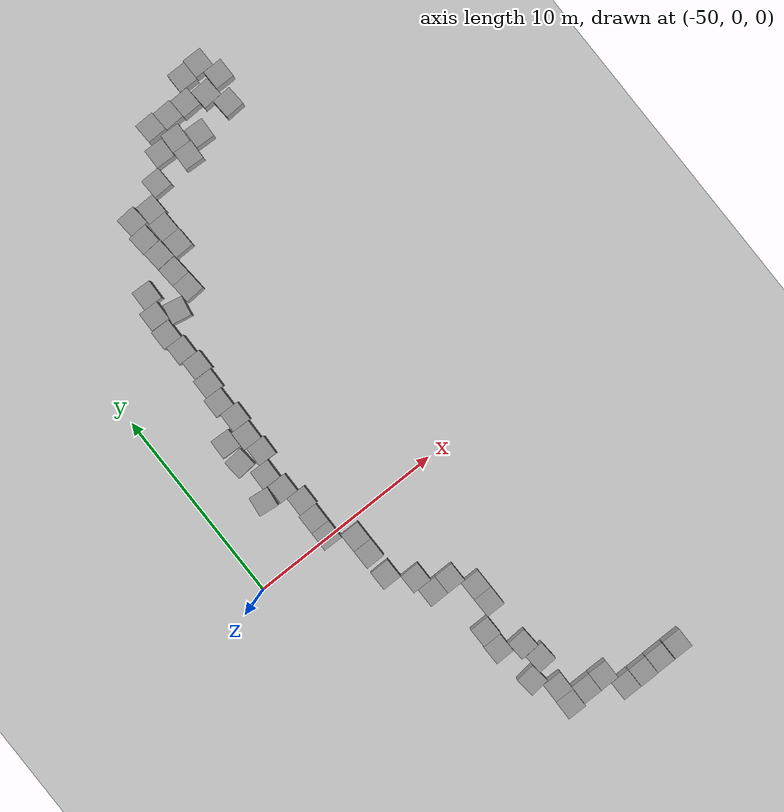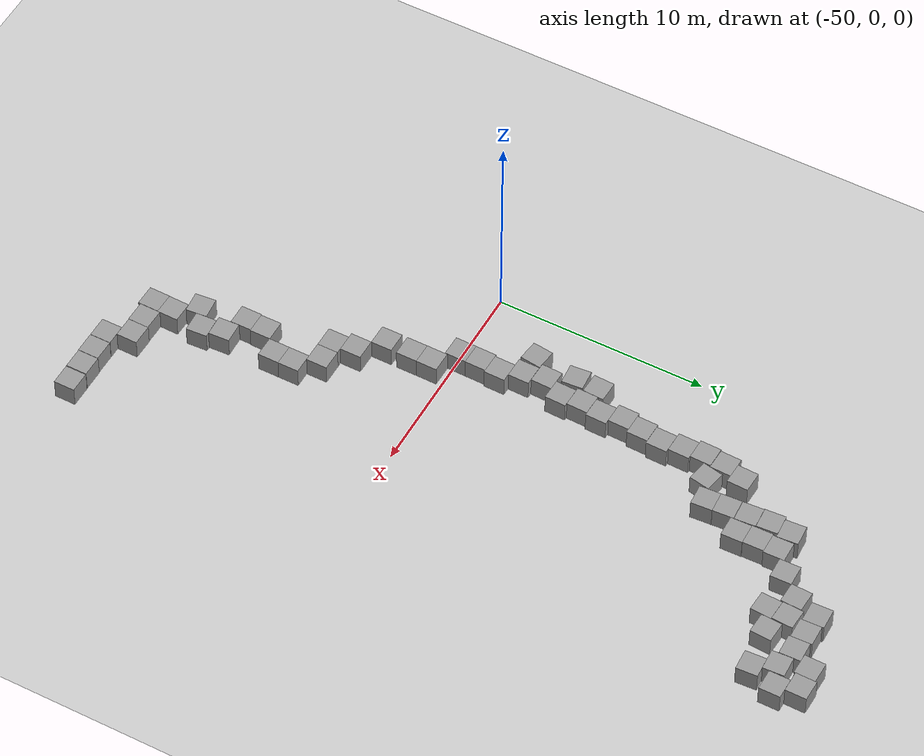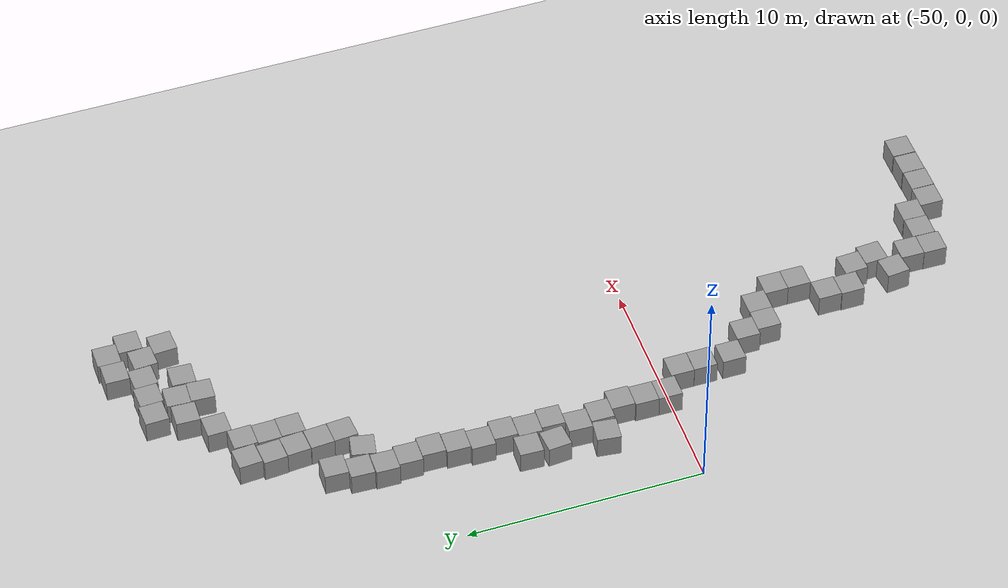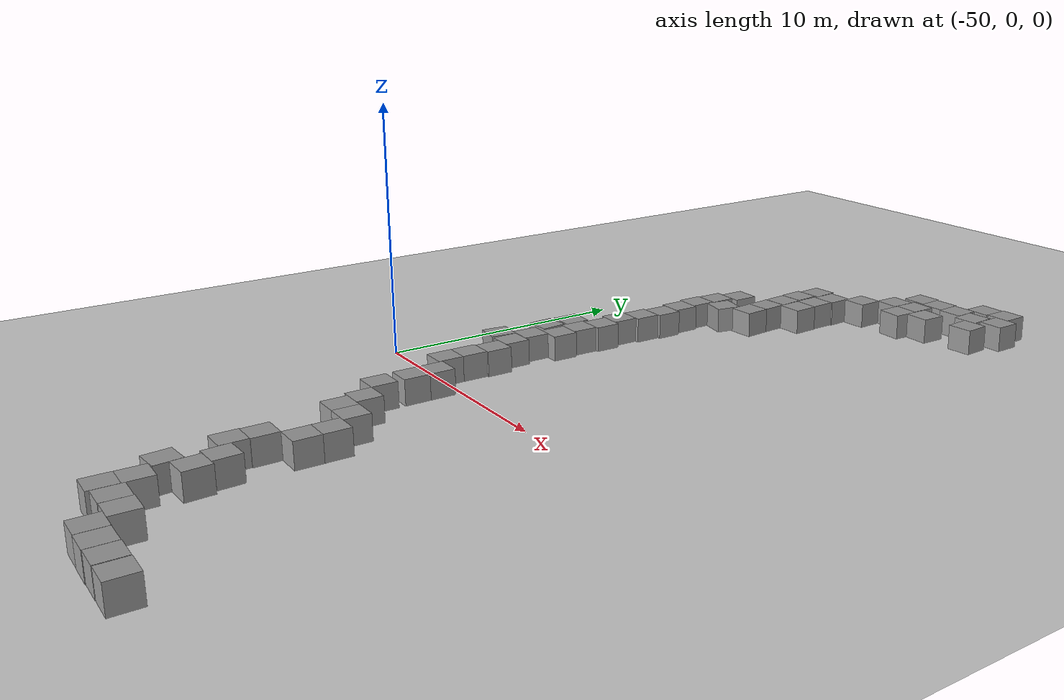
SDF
<sdf version="1.7">
 <world name="default">
  <model name="ground_plane">
   <static>1</static>
   <link name="link">
    <collision name="collision">
     <geometry><plane><normal>0 0 1</normal><size>100 100</size></plane></geometry>
     <surface>
      <contact><collide_bitmask>65535</collide_bitmask></contact>
      <friction><ode><mu>100</mu><mu2>50</mu2></ode></friction>
     </surface>
    </collision>
    <visual name="visual">
     <cast_shadows>0</cast_shadows>
     <geometry><plane><normal>0 0 1</normal><size>100 100</size></plane></geometry>
     <material>
      <script><uri>file://media/materials/scripts/gazebo.material</uri><name>Gazebo/Grey</name></script>
     </material>
    </visual>
   </link>
  </model>
  <model name="unit_box_clone_186">
   <pose>-36.3603 -14.0013 0.5 -0 -0 -0.003585</pose>
   <link name="link">
    <inertial>
     <mass>1</mass>
     <inertia>
      <ixx>0.166667</ixx>
      <ixy>0</ixy>
      <ixz>0</ixz>
      <iyy>0.166667</iyy>
      <iyz>0</iyz>
      <izz>0.166667</izz>
     </inertia>
    </inertial>
    <collision name="collision"><geometry><box><size>1 1 1</size></box></geometry></collision>
    <visual name="visual">
     <geometry><box><size>1 1 1</size></box></geometry>
     <material>
      <script><name>Gazebo/Grey</name><uri>file://media/materials/scripts/gazebo.material</uri></script>
     </material>
    </visual>
   </link>
  </model>
  <model name="unit_box_clone_187">
   <pose>-38.4031 -14.0192 0.5 0 -0 -0.003781</pose>
   <link name="link">
    <inertial>
     <mass>1</mass>
     <inertia>
      <ixx>0.166667</ixx>
      <ixy>0</ixy>
      <ixz>0</ixz>
      <iyy>0.166667</iyy>
      <iyz>0</iyz>
      <izz>0.166667</izz>
     </inertia>
    </inertial>
    <collision name="collision"><geometry><box><size>1 1 1</size></box></geometry></collision>
    <visual name="visual">
     <geometry><box><size>1 1 1</size></box></geometry>
     <material>
      <script><name>Gazebo/Grey</name><uri>file://media/materials/scripts/gazebo.material</uri></script>
     </material>
    </visual>
   </link>
  </model>
  <model name="unit_box_clone_188">
   <pose>-39.413 -14.0108 0.5 0 -0 -0.002935</pose>
   <link name="link">
    <inertial>
     <mass>1</mass>
     <inertia>
      <ixx>0.166667</ixx>
      <ixy>0</ixy>
      <ixz>0</ixz>
      <iyy>0.166667</iyy>
      <iyz>0</iyz>
      <izz>0.166667</izz>
     </inertia>
    </inertial>
    <collision name="collision"><geometry><box><size>1 1 1</size></box></geometry></collision>
    <visual name="visual">
     <geometry><box><size>1 1 1</size></box></geometry>
     <material>
      <script><name>Gazebo/Grey</name><uri>file://media/materials/scripts/gazebo.material</uri></script>
     </material>
    </visual>
   </link>
  </model>
  <model name="unit_box_clone_189">
   <pose>-37.3936 -14.0058 0.5 -0 -0 -0.004055</pose>
   <link name="link">
    <inertial>
     <mass>1</mass>
     <inertia>
      <ixx>0.166667</ixx>
      <ixy>0</ixy>
      <ixz>0</ixz>
      <iyy>0.166667</iyy>
      <iyz>0</iyz>
      <izz>0.166667</izz>
     </inertia>
    </inertial>
    <collision name="collision"><geometry><box><size>1 1 1</size></box></geometry></collision>
    <visual name="visual">
     <geometry><box><size>1 1 1</size></box></geometry>
     <material>
      <script><name>Gazebo/Grey</name><uri>file://media/materials/scripts/gazebo.material</uri></script>
     </material>
    </visual>
   </link>
  </model>
  <model name="unit_box_clone_190">
   <pose>-39.9757 -13.0041 0.499995 0 -1e-05 -0.012272</pose>
   <link name="link">
    <inertial>
     <mass>1</mass>
     <inertia>
      <ixx>0.166667</ixx>
      <ixy>0</ixy>
      <ixz>0</ixz>
      <iyy>0.166667</iyy>
      <iyz>0</iyz>
      <izz>0.166667</izz>
     </inertia>
    </inertial>
    <collision name="collision"><geometry><box><size>1 1 1</size></box></geometry></collision>
    <visual name="visual">
     <geometry><box><size>1 1 1</size></box></geometry>
     <material>
      <script><name>Gazebo/Grey</name><uri>file://media/materials/scripts/gazebo.material</uri></script>
     </material>
    </visual>
   </link>
  </model>
  <model name="unit_box_clone_191">
   <pose>-41.9896 -13.1108 0.5 0 0 -0.015698</pose>
   <link name="link">
    <inertial>
     <mass>1</mass>
     <inertia>
      <ixx>0.166667</ixx>
      <ixy>0</ixy>
      <ixz>0</ixz>
      <iyy>0.166667</iyy>
      <iyz>0</iyz>
      <izz>0.166667</izz>
     </inertia>
    </inertial>
    <collision name="collision"><geometry><box><size>1 1 1</size></box></geometry></collision>
    <visual name="visual">
     <geometry><box><size>1 1 1</size></box></geometry>
     <material>
      <script><name>Gazebo/Grey</name><uri>file://media/materials/scripts/gazebo.material</uri></script>
     </material>
    </visual>
   </link>
  </model>
  <model name="unit_box_clone_192">
   <pose>-40.9771 -13.0068 0.5 0 0 -0.014862</pose>
   <link name="link">
    <inertial>
     <mass>1</mass>
     <inertia>
      <ixx>0.166667</ixx>
      <ixy>0</ixy>
      <ixz>0</ixz>
      <iyy>0.166667</iyy>
      <iyz>0</iyz>
      <izz>0.166667</izz>
     </inertia>
    </inertial>
    <collision name="collision"><geometry><box><size>1 1 1</size></box></geometry></collision>
    <visual name="visual">
     <geometry><box><size>1 1 1</size></box></geometry>
     <material>
      <script><name>Gazebo/Grey</name><uri>file://media/materials/scripts/gazebo.material</uri></script>
     </material>
    </visual>
   </link>
  </model>
  <model name="unit_box_clone_193">
   <pose>-41.9636 -12.1111 0.499995 1e-05 0 -0.015695</pose>
   <link name="link">
    <inertial>
     <mass>1</mass>
     <inertia>
      <ixx>0.166667</ixx>
      <ixy>0</ixy>
      <ixz>0</ixz>
      <iyy>0.166667</iyy>
      <iyz>0</iyz>
      <izz>0.166667</izz>
     </inertia>
    </inertial>
    <collision name="collision"><geometry><box><size>1 1 1</size></box></geometry></collision>
    <visual name="visual">
     <geometry><box><size>1 1 1</size></box></geometry>
     <material>
      <script><name>Gazebo/Grey</name><uri>file://media/materials/scripts/gazebo.material</uri></script>
     </material>
    </visual>
   </link>
  </model>
  <model name="unit_box_clone_194">
   <pose>-42.7094 -11.1262 0.499995 -0 -1e-05 0.099771</pose>
   <link name="link">
    <inertial>
     <mass>1</mass>
     <inertia>
      <ixx>0.166667</ixx>
      <ixy>0</ixy>
      <ixz>0</ixz>
      <iyy>0.166667</iyy>
      <iyz>0</iyz>
      <izz>0.166667</izz>
     </inertia>
    </inertial>
    <collision name="collision"><geometry><box><size>1 1 1</size></box></geometry></collision>
    <visual name="visual">
     <geometry><box><size>1 1 1</size></box></geometry>
     <material>
      <script><name>Gazebo/Grey</name><uri>file://media/materials/scripts/gazebo.material</uri></script>
     </material>
    </visual>
   </link>
  </model>
  <model name="unit_box_clone_195">
   <pose>-41.744 -10.5341 0.5 0 -0 0.059918</pose>
   <link name="link">
    <inertial>
     <mass>1</mass>
     <inertia>
      <ixx>0.166667</ixx>
      <ixy>0</ixy>
      <ixz>0</ixz>
      <iyy>0.166667</iyy>
      <iyz>0</iyz>
      <izz>0.166667</izz>
     </inertia>
    </inertial>
    <collision name="collision"><geometry><box><size>1 1 1</size></box></geometry></collision>
    <visual name="visual">
     <geometry><box><size>1 1 1</size></box></geometry>
     <material>
      <script><name>Gazebo/Grey</name><uri>file://media/materials/scripts/gazebo.material</uri></script>
     </material>
    </visual>
   </link>
  </model>
  <model name="unit_box_clone_196">
   <pose>-42.0059 -9.54291 0.499995 0 1e-05 0.049684</pose>
   <link name="link">
    <inertial>
     <mass>1</mass>
     <inertia>
      <ixx>0.166667</ixx>
      <ixy>0</ixy>
      <ixz>0</ixz>
      <iyy>0.166667</iyy>
      <iyz>0</iyz>
      <izz>0.166667</izz>
     </inertia>
    </inertial>
    <collision name="collision"><geometry><box><size>1 1 1</size></box></geometry></collision>
    <visual name="visual">
     <geometry><box><size>1 1 1</size></box></geometry>
     <material>
      <script><name>Gazebo/Grey</name><uri>file://media/materials/scripts/gazebo.material</uri></script>
     </material>
    </visual>
   </link>
  </model>
  <model name="unit_box_clone_197">
   <pose>-43.0314 -8.99472 0.499995 0 1e-05 0.006453</pose>
   <link name="link">
    <inertial>
     <mass>1</mass>
     <inertia>
      <ixx>0.166667</ixx>
      <ixy>0</ixy>
      <ixz>0</ixz>
      <iyy>0.166667</iyy>
      <iyz>0</iyz>
      <izz>0.166667</izz>
     </inertia>
    </inertial>
    <collision name="collision"><geometry><box><size>1 1 1</size></box></geometry></collision>
    <visual name="visual">
     <geometry><box><size>1 1 1</size></box></geometry>
     <material>
      <script><name>Gazebo/Grey</name><uri>file://media/materials/scripts/gazebo.material</uri></script>
     </material>
    </visual>
   </link>
  </model>
  <model name="unit_box_clone_198">
   <pose>-42 -7 0.5 0 -0 2e-06</pose>
   <link name="link">
    <inertial>
     <mass>1</mass>
     <inertia>
      <ixx>0.166667</ixx>
      <ixy>0</ixy>
      <ixz>0</ixz>
      <iyy>0.166667</iyy>
      <iyz>0</iyz>
      <izz>0.166667</izz>
     </inertia>
    </inertial>
    <collision name="collision"><geometry><box><size>1 1 1</size></box></geometry></collision>
    <visual name="visual">
     <geometry><box><size>1 1 1</size></box></geometry>
     <material>
      <script><name>Gazebo/Grey</name><uri>file://media/materials/scripts/gazebo.material</uri></script>
     </material>
    </visual>
   </link>
  </model>
  <model name="unit_box_clone_199">
   <pose>-42.9999 -7.99449 0.5 0 -0 0.006444</pose>
   <link name="link">
    <inertial>
     <mass>1</mass>
     <inertia>
      <ixx>0.166667</ixx>
      <ixy>0</ixy>
      <ixz>0</ixz>
      <iyy>0.166667</iyy>
      <iyz>0</iyz>
      <izz>0.166667</izz>
     </inertia>
    </inertial>
    <collision name="collision"><geometry><box><size>1 1 1</size></box></geometry></collision>
    <visual name="visual">
     <geometry><box><size>1 1 1</size></box></geometry>
     <material>
      <script><name>Gazebo/Grey</name><uri>file://media/materials/scripts/gazebo.material</uri></script>
     </material>
    </visual>
   </link>
  </model>
  <model name="unit_box_clone_200">
   <pose>-42 -6 0.5 0 -0 3e-06</pose>
   <link name="link">
    <inertial>
     <mass>1</mass>
     <inertia>
      <ixx>0.166667</ixx>
      <ixy>0</ixy>
      <ixz>0</ixz>
      <iyy>0.166667</iyy>
      <iyz>0</iyz>
      <izz>0.166667</izz>
     </inertia>
    </inertial>
    <collision name="collision"><geometry><box><size>1 1 1</size></box></geometry></collision>
    <visual name="visual">
     <geometry><box><size>1 1 1</size></box></geometry>
     <material>
      <script><name>Gazebo/Grey</name><uri>file://media/materials/scripts/gazebo.material</uri></script>
     </material>
    </visual>
   </link>
  </model>
  <model name="unit_box_clone_201">
   <pose>-42.763 -5 0.5 0 -0 3e-06</pose>
   <link name="link">
    <inertial>
     <mass>1</mass>
     <inertia>
      <ixx>0.166667</ixx>
      <ixy>0</ixy>
      <ixz>0</ixz>
      <iyy>0.166667</iyy>
      <iyz>0</iyz>
      <izz>0.166667</izz>
     </inertia>
    </inertial>
    <collision name="collision"><geometry><box><size>1 1 1</size></box></geometry></collision>
    <visual name="visual">
     <geometry><box><size>1 1 1</size></box></geometry>
     <material>
      <script><name>Gazebo/Grey</name><uri>file://media/materials/scripts/gazebo.material</uri></script>
     </material>
    </visual>
   </link>
  </model>
  <model name="unit_box_clone_202">
   <pose>-43.763 -5 0.5 0 0 -4e-06</pose>
   <link name="link">
    <inertial>
     <mass>1</mass>
     <inertia>
      <ixx>0.166667</ixx>
      <ixy>0</ixy>
      <ixz>0</ixz>
      <iyy>0.166667</iyy>
      <iyz>0</iyz>
      <izz>0.166667</izz>
     </inertia>
    </inertial>
    <collision name="collision"><geometry><box><size>1 1 1</size></box></geometry></collision>
    <visual name="visual">
     <geometry><box><size>1 1 1</size></box></geometry>
     <material>
      <script><name>Gazebo/Grey</name><uri>file://media/materials/scripts/gazebo.material</uri></script>
     </material>
    </visual>
   </link>
  </model>
  <model name="unit_box_clone_203">
   <pose>-44 -4 0.5 0 0 -1e-05</pose>
   <link name="link">
    <inertial>
     <mass>1</mass>
     <inertia>
      <ixx>0.166667</ixx>
      <ixy>0</ixy>
      <ixz>0</ixz>
      <iyy>0.166667</iyy>
      <iyz>0</iyz>
      <izz>0.166667</izz>
     </inertia>
    </inertial>
    <collision name="collision"><geometry><box><size>1 1 1</size></box></geometry></collision>
    <visual name="visual">
     <geometry><box><size>1 1 1</size></box></geometry>
     <material>
      <script><name>Gazebo/Grey</name><uri>file://media/materials/scripts/gazebo.material</uri></script>
     </material>
    </visual>
   </link>
  </model>
  <model name="unit_box_clone_204">
   <pose>-45 -3 0.5 0 -0 7e-06</pose>
   <link name="link">
    <inertial>
     <mass>1</mass>
     <inertia>
      <ixx>0.166667</ixx>
      <ixy>0</ixy>
      <ixz>0</ixz>
      <iyy>0.166667</iyy>
      <iyz>0</iyz>
      <izz>0.166667</izz>
     </inertia>
    </inertial>
    <collision name="collision"><geometry><box><size>1 1 1</size></box></geometry></collision>
    <visual name="visual">
     <geometry><box><size>1 1 1</size></box></geometry>
     <material>
      <script><name>Gazebo/Grey</name><uri>file://media/materials/scripts/gazebo.material</uri></script>
     </material>
    </visual>
   </link>
  </model>
  <model name="unit_box_clone_205">
   <pose>-45 -1.74627 0.5 -0 -0 -0.001537</pose>
   <link name="link">
    <inertial>
     <mass>1</mass>
     <inertia>
      <ixx>0.166667</ixx>
      <ixy>0</ixy>
      <ixz>0</ixz>
      <iyy>0.166667</iyy>
      <iyz>0</iyz>
      <izz>0.166667</izz>
     </inertia>
    </inertial>
    <collision name="collision"><geometry><box><size>1 1 1</size></box></geometry></collision>
    <visual name="visual">
     <geometry><box><size>1 1 1</size></box></geometry>
     <material>
      <script><name>Gazebo/Grey</name><uri>file://media/materials/scripts/gazebo.material</uri></script>
     </material>
    </visual>
   </link>
  </model>
  <model name="unit_box_clone_206">
   <pose>-44.9979 -0.744633 0.499995 0 -1e-05 -0.004738</pose>
   <link name="link">
    <inertial>
     <mass>1</mass>
     <inertia>
      <ixx>0.166667</ixx>
      <ixy>0</ixy>
      <ixz>0</ixz>
      <iyy>0.166667</iyy>
      <iyz>0</iyz>
      <izz>0.166667</izz>
     </inertia>
    </inertial>
    <collision name="collision"><geometry><box><size>1 1 1</size></box></geometry></collision>
    <visual name="visual">
     <geometry><box><size>1 1 1</size></box></geometry>
     <material>
      <script><name>Gazebo/Grey</name><uri>file://media/materials/scripts/gazebo.material</uri></script>
     </material>
    </visual>
   </link>
  </model>
  <model name="unit_box_clone_234">
   <pose>-36.9707 21.2046 0.499995 1e-05 -0 -0.008625</pose>
   <link name="link">
    <inertial>
     <mass>1</mass>
     <inertia>
      <ixx>0.166667</ixx>
      <ixy>0</ixy>
      <ixz>0</ixz>
      <iyy>0.166667</iyy>
      <iyz>0</iyz>
      <izz>0.166667</izz>
     </inertia>
    </inertial>
    <collision name="collision"><geometry><box><size>1 1 1</size></box></geometry></collision>
    <visual name="visual">
     <geometry><box><size>1 1 1</size></box></geometry>
     <material>
      <script><name>Gazebo/Grey</name><uri>file://media/materials/scripts/gazebo.material</uri></script>
     </material>
    </visual>
   </link>
  </model>
  <model name="unit_box_clone_235">
   <pose>-37.9718 21.1315 0.5 0 0 -0.009166</pose>
   <link name="link">
    <inertial>
     <mass>1</mass>
     <inertia>
      <ixx>0.166667</ixx>
      <ixy>0</ixy>
      <ixz>0</ixz>
      <iyy>0.166667</iyy>
      <iyz>0</iyz>
      <izz>0.166667</izz>
     </inertia>
    </inertial>
    <collision name="collision"><geometry><box><size>1 1 1</size></box></geometry></collision>
    <visual name="visual">
     <geometry><box><size>1 1 1</size></box></geometry>
     <material>
      <script><name>Gazebo/Grey</name><uri>file://media/materials/scripts/gazebo.material</uri></script>
     </material>
    </visual>
   </link>
  </model>
  <model name="unit_box_clone_236">
   <pose>-37.5602 19.8514 0.5 0 -0 0.055608</pose>
   <link name="link">
    <inertial>
     <mass>1</mass>
     <inertia>
      <ixx>0.166667</ixx>
      <ixy>0</ixy>
      <ixz>0</ixz>
      <iyy>0.166667</iyy>
      <iyz>0</iyz>
      <izz>0.166667</izz>
     </inertia>
    </inertial>
    <collision name="collision"><geometry><box><size>1 1 1</size></box></geometry></collision>
    <visual name="visual">
     <geometry><box><size>1 1 1</size></box></geometry>
     <material>
      <script><name>Gazebo/Grey</name><uri>file://media/materials/scripts/gazebo.material</uri></script>
     </material>
    </visual>
   </link>
  </model>
  <model name="unit_box_clone_237">
   <pose>-36.5384 20.2002 0.499995 -1e-05 0 0.000971</pose>
   <link name="link">
    <inertial>
     <mass>1</mass>
     <inertia>
      <ixx>0.166667</ixx>
      <ixy>0</ixy>
      <ixz>0</ixz>
      <iyy>0.166667</iyy>
      <iyz>0</iyz>
      <izz>0.166667</izz>
     </inertia>
    </inertial>
    <collision name="collision"><geometry><box><size>1 1 1</size></box></geometry></collision>
    <visual name="visual">
     <geometry><box><size>1 1 1</size></box></geometry>
     <material>
      <script><name>Gazebo/Grey</name><uri>file://media/materials/scripts/gazebo.material</uri></script>
     </material>
    </visual>
   </link>
  </model>
  <model name="unit_box_clone_241">
   <pose>-38.9719 18.5927 0.499995 1e-05 0 -0.046967</pose>
   <link name="link">
    <inertial>
     <mass>1</mass>
     <inertia>
      <ixx>0.166667</ixx>
      <ixy>0</ixy>
      <ixz>0</ixz>
      <iyy>0.166667</iyy>
      <iyz>0</iyz>
      <izz>0.166667</izz>
     </inertia>
    </inertial>
    <collision name="collision"><geometry><box><size>1 1 1</size></box></geometry></collision>
    <visual name="visual">
     <geometry><box><size>1 1 1</size></box></geometry>
     <material>
      <script><name>Gazebo/Grey</name><uri>file://media/materials/scripts/gazebo.material</uri></script>
     </material>
    </visual>
   </link>
  </model>
  <model name="unit_box_clone_242">
   <pose>-40.0077 18.0909 0.499995 0 1e-05 -0.050763</pose>
   <link name="link">
    <inertial>
     <mass>1</mass>
     <inertia>
      <ixx>0.166667</ixx>
      <ixy>0</ixy>
      <ixz>0</ixz>
      <iyy>0.166667</iyy>
      <iyz>0</iyz>
      <izz>0.166667</izz>
     </inertia>
    </inertial>
    <collision name="collision"><geometry><box><size>1 1 1</size></box></geometry></collision>
    <visual name="visual">
     <geometry><box><size>1 1 1</size></box></geometry>
     <material>
      <script><name>Gazebo/Grey</name><uri>file://media/materials/scripts/gazebo.material</uri></script>
     </material>
    </visual>
   </link>
  </model>
  <model name="unit_box_clone_243">
   <pose>-40.5931 20.2132 0.5 0 -0 0.032302</pose>
   <link name="link">
    <inertial>
     <mass>1</mass>
     <inertia>
      <ixx>0.166667</ixx>
      <ixy>0</ixy>
      <ixz>0</ixz>
      <iyy>0.166667</iyy>
      <iyz>0</iyz>
      <izz>0.166667</izz>
     </inertia>
    </inertial>
    <collision name="collision"><geometry><box><size>1 1 1</size></box></geometry></collision>
    <visual name="visual">
     <geometry><box><size>1 1 1</size></box></geometry>
     <material>
      <script><name>Gazebo/Grey</name><uri>file://media/materials/scripts/gazebo.material</uri></script>
     </material>
    </visual>
   </link>
  </model>
  <model name="unit_box_clone_244">
   <pose>-41.0131 19.0044 0.499995 0 1e-05 -0.033439</pose>
   <link name="link">
    <inertial>
     <mass>1</mass>
     <inertia>
      <ixx>0.166667</ixx>
      <ixy>0</ixy>
      <ixz>0</ixz>
      <iyy>0.166667</iyy>
      <iyz>0</iyz>
      <izz>0.166667</izz>
     </inertia>
    </inertial>
    <collision name="collision"><geometry><box><size>1 1 1</size></box></geometry></collision>
    <visual name="visual">
     <geometry><box><size>1 1 1</size></box></geometry>
     <material>
      <script><name>Gazebo/Grey</name><uri>file://media/materials/scripts/gazebo.material</uri></script>
     </material>
    </visual>
   </link>
  </model>
  <model name="unit_box_clone_245">
   <pose>-41.9856 18.0055 0.5 0 -0 0.025177</pose>
   <link name="link">
    <inertial>
     <mass>1</mass>
     <inertia>
      <ixx>0.166667</ixx>
      <ixy>0</ixy>
      <ixz>0</ixz>
      <iyy>0.166667</iyy>
      <iyz>0</iyz>
      <izz>0.166667</izz>
     </inertia>
    </inertial>
    <collision name="collision"><geometry><box><size>1 1 1</size></box></geometry></collision>
    <visual name="visual">
     <geometry><box><size>1 1 1</size></box></geometry>
     <material>
      <script><name>Gazebo/Grey</name><uri>file://media/materials/scripts/gazebo.material</uri></script>
     </material>
    </visual>
   </link>
  </model>
  <model name="unit_box_clone_246">
   <pose>-42.9709 17.1913 0.5 0 -0 0.02283</pose>
   <link name="link">
    <inertial>
     <mass>1</mass>
     <inertia>
      <ixx>0.166667</ixx>
      <ixy>0</ixy>
      <ixz>0</ixz>
      <iyy>0.166667</iyy>
      <iyz>0</iyz>
      <izz>0.166667</izz>
     </inertia>
    </inertial>
    <collision name="collision"><geometry><box><size>1 1 1</size></box></geometry></collision>
    <visual name="visual">
     <geometry><box><size>1 1 1</size></box></geometry>
     <material>
      <script><name>Gazebo/Grey</name><uri>file://media/materials/scripts/gazebo.material</uri></script>
     </material>
    </visual>
   </link>
  </model>
  <model name="unit_box_clone_247">
   <pose>-42.965 15.1906 0.5 0 -0 0.022725</pose>
   <link name="link">
    <inertial>
     <mass>1</mass>
     <inertia>
      <ixx>0.166667</ixx>
      <ixy>0</ixy>
      <ixz>0</ixz>
      <iyy>0.166667</iyy>
      <iyz>0</iyz>
      <izz>0.166667</izz>
     </inertia>
    </inertial>
    <collision name="collision"><geometry><box><size>1 1 1</size></box></geometry></collision>
    <visual name="visual">
     <geometry><box><size>1 1 1</size></box></geometry>
     <material>
      <script><name>Gazebo/Grey</name><uri>file://media/materials/scripts/gazebo.material</uri></script>
     </material>
    </visual>
   </link>
  </model>
  <model name="unit_box_clone_248">
   <pose>-43.8617 13.2784 0.5 0 -0 0.065118</pose>
   <link name="link">
    <inertial>
     <mass>1</mass>
     <inertia>
      <ixx>0.166667</ixx>
      <ixy>0</ixy>
      <ixz>0</ixz>
      <iyy>0.166667</iyy>
      <iyz>0</iyz>
      <izz>0.166667</izz>
     </inertia>
    </inertial>
    <collision name="collision"><geometry><box><size>1 1 1</size></box></geometry></collision>
    <visual name="visual">
     <geometry><box><size>1 1 1</size></box></geometry>
     <material>
      <script><name>Gazebo/Grey</name><uri>file://media/materials/scripts/gazebo.material</uri></script>
     </material>
    </visual>
   </link>
  </model>
  <model name="unit_box_clone_249">
   <pose>-44.9415 12.7466 0.5 0 0 -0.195312</pose>
   <link name="link">
    <inertial>
     <mass>1</mass>
     <inertia>
      <ixx>0.166667</ixx>
      <ixy>0</ixy>
      <ixz>0</ixz>
      <iyy>0.166667</iyy>
      <iyz>0</iyz>
      <izz>0.166667</izz>
     </inertia>
    </inertial>
    <collision name="collision"><geometry><box><size>1 1 1</size></box></geometry></collision>
    <visual name="visual">
     <geometry><box><size>1 1 1</size></box></geometry>
     <material>
      <script><name>Gazebo/Grey</name><uri>file://media/materials/scripts/gazebo.material</uri></script>
     </material>
    </visual>
   </link>
  </model>
  <model name="unit_box_clone_250">
   <pose>-45.9552 13.1758 0.5 -0 -0 -0.033901</pose>
   <link name="link">
    <inertial>
     <mass>1</mass>
     <inertia>
      <ixx>0.166667</ixx>
      <ixy>0</ixy>
      <ixz>0</ixz>
      <iyy>0.166667</iyy>
      <iyz>0</iyz>
      <izz>0.166667</izz>
     </inertia>
    </inertial>
    <collision name="collision"><geometry><box><size>1 1 1</size></box></geometry></collision>
    <visual name="visual">
     <geometry><box><size>1 1 1</size></box></geometry>
     <material>
      <script><name>Gazebo/Grey</name><uri>file://media/materials/scripts/gazebo.material</uri></script>
     </material>
    </visual>
   </link>
  </model>
  <model name="unit_box_clone_251">
   <pose>-45.9389 11.1602 0.499995 -1e-05 -0 -0.018604</pose>
   <link name="link">
    <inertial>
     <mass>1</mass>
     <inertia>
      <ixx>0.166667</ixx>
      <ixy>0</ixy>
      <ixz>0</ixz>
      <iyy>0.166667</iyy>
      <iyz>0</iyz>
      <izz>0.166667</izz>
     </inertia>
    </inertial>
    <collision name="collision"><geometry><box><size>1 1 1</size></box></geometry></collision>
    <visual name="visual">
     <geometry><box><size>1 1 1</size></box></geometry>
     <material>
      <script><name>Gazebo/Grey</name><uri>file://media/materials/scripts/gazebo.material</uri></script>
     </material>
    </visual>
   </link>
  </model>
  <model name="unit_box_clone_252">
   <pose>-45.9328 9.14936 0.499995 -0 -1e-05 -0.019058</pose>
   <link name="link">
    <inertial>
     <mass>1</mass>
     <inertia>
      <ixx>0.166667</ixx>
      <ixy>0</ixy>
      <ixz>0</ixz>
      <iyy>0.166667</iyy>
      <iyz>0</iyz>
      <izz>0.166667</izz>
     </inertia>
    </inertial>
    <collision name="collision"><geometry><box><size>1 1 1</size></box></geometry></collision>
    <visual name="visual">
     <geometry><box><size>1 1 1</size></box></geometry>
     <material>
      <script><name>Gazebo/Grey</name><uri>file://media/materials/scripts/gazebo.material</uri></script>
     </material>
    </visual>
   </link>
  </model>
  <model name="unit_box_clone_253">
   <pose>-46.1065 8.15231 0.499995 1e-05 -0 -0.018941</pose>
   <link name="link">
    <inertial>
     <mass>1</mass>
     <inertia>
      <ixx>0.166667</ixx>
      <ixy>0</ixy>
      <ixz>0</ixz>
      <iyy>0.166667</iyy>
      <iyz>0</iyz>
      <izz>0.166667</izz>
     </inertia>
    </inertial>
    <collision name="collision"><geometry><box><size>1 1 1</size></box></geometry></collision>
    <visual name="visual">
     <geometry><box><size>1 1 1</size></box></geometry>
     <material>
      <script><name>Gazebo/Grey</name><uri>file://media/materials/scripts/gazebo.material</uri></script>
     </material>
    </visual>
   </link>
  </model>
  <model name="unit_box_clone_254">
   <pose>-45.9133 7.14793 0.5 -0 -0 -0.02003</pose>
   <link name="link">
    <inertial>
     <mass>1</mass>
     <inertia>
      <ixx>0.166667</ixx>
      <ixy>0</ixy>
      <ixz>0</ixz>
      <iyy>0.166667</iyy>
      <iyz>0</iyz>
      <izz>0.166667</izz>
     </inertia>
    </inertial>
    <collision name="collision"><geometry><box><size>1 1 1</size></box></geometry></collision>
    <visual name="visual">
     <geometry><box><size>1 1 1</size></box></geometry>
     <material>
      <script><name>Gazebo/Grey</name><uri>file://media/materials/scripts/gazebo.material</uri></script>
     </material>
    </visual>
   </link>
  </model>
  <model name="unit_box_clone_255">
   <pose>-46.0556 6.14792 0.5 -0 -0 -0.02704</pose>
   <link name="link">
    <inertial>
     <mass>1</mass>
     <inertia>
      <ixx>0.166667</ixx>
      <ixy>0</ixy>
      <ixz>0</ixz>
      <iyy>0.166667</iyy>
      <iyz>0</iyz>
      <izz>0.166667</izz>
     </inertia>
    </inertial>
    <collision name="collision"><geometry><box><size>1 1 1</size></box></geometry></collision>
    <visual name="visual">
     <geometry><box><size>1 1 1</size></box></geometry>
     <material>
      <script><name>Gazebo/Grey</name><uri>file://media/materials/scripts/gazebo.material</uri></script>
     </material>
    </visual>
   </link>
  </model>
  <model name="unit_box_clone_256">
   <pose>-47.1035 5.30757 0.5 0 -0 0.08199</pose>
   <link name="link">
    <inertial>
     <mass>1</mass>
     <inertia>
      <ixx>0.166667</ixx>
      <ixy>0</ixy>
      <ixz>0</ixz>
      <iyy>0.166667</iyy>
      <iyz>0</iyz>
      <izz>0.166667</izz>
     </inertia>
    </inertial>
    <collision name="collision"><geometry><box><size>1 1 1</size></box></geometry></collision>
    <visual name="visual">
     <geometry><box><size>1 1 1</size></box></geometry>
     <material>
      <script><name>Gazebo/Grey</name><uri>file://media/materials/scripts/gazebo.material</uri></script>
     </material>
    </visual>
   </link>
  </model>
  <model name="unit_box_clone_257">
   <pose>-46.4935 4.15824 0.5 0 0 -0.031322</pose>
   <link name="link">
    <inertial>
     <mass>1</mass>
     <inertia>
      <ixx>0.166667</ixx>
      <ixy>0</ixy>
      <ixz>0</ixz>
      <iyy>0.166667</iyy>
      <iyz>0</iyz>
      <izz>0.166667</izz>
     </inertia>
    </inertial>
    <collision name="collision"><geometry><box><size>1 1 1</size></box></geometry></collision>
    <visual name="visual">
     <geometry><box><size>1 1 1</size></box></geometry>
     <material>
      <script><name>Gazebo/Grey</name><uri>file://media/materials/scripts/gazebo.material</uri></script>
     </material>
    </visual>
   </link>
  </model>
  <model name="unit_box_clone_258">
   <pose>-47.3492 3.21214 0.499995 0 1e-05 -0.122067</pose>
   <link name="link">
    <inertial>
     <mass>1</mass>
     <inertia>
      <ixx>0.166667</ixx>
      <ixy>0</ixy>
      <ixz>0</ixz>
      <iyy>0.166667</iyy>
      <iyz>0</iyz>
      <izz>0.166667</izz>
     </inertia>
    </inertial>
    <collision name="collision"><geometry><box><size>1 1 1</size></box></geometry></collision>
    <visual name="visual">
     <geometry><box><size>1 1 1</size></box></geometry>
     <material>
      <script><name>Gazebo/Grey</name><uri>file://media/materials/scripts/gazebo.material</uri></script>
     </material>
    </visual>
   </link>
  </model>
  <model name="unit_box_clone_259">
   <pose>-46.2697 3.14546 0.5 -0 -0 -0.012539</pose>
   <link name="link">
    <inertial>
     <mass>1</mass>
     <inertia>
      <ixx>0.166667</ixx>
      <ixy>0</ixy>
      <ixz>0</ixz>
      <iyy>0.166667</iyy>
      <iyz>0</iyz>
      <izz>0.166667</izz>
     </inertia>
    </inertial>
    <collision name="collision"><geometry><box><size>1 1 1</size></box></geometry></collision>
    <visual name="visual">
     <geometry><box><size>1 1 1</size></box></geometry>
     <material>
      <script><name>Gazebo/Grey</name><uri>file://media/materials/scripts/gazebo.material</uri></script>
     </material>
    </visual>
   </link>
  </model>
  <model name="unit_box_clone_260">
   <pose>-45.9095 2.14081 0.5 0 0 -0.012192</pose>
   <link name="link">
    <inertial>
     <mass>1</mass>
     <inertia>
      <ixx>0.166667</ixx>
      <ixy>0</ixy>
      <ixz>0</ixz>
      <iyy>0.166667</iyy>
      <iyz>0</iyz>
      <izz>0.166667</izz>
     </inertia>
    </inertial>
    <collision name="collision"><geometry><box><size>1 1 1</size></box></geometry></collision>
    <visual name="visual">
     <geometry><box><size>1 1 1</size></box></geometry>
     <material>
      <script><name>Gazebo/Grey</name><uri>file://media/materials/scripts/gazebo.material</uri></script>
     </material>
    </visual>
   </link>
  </model>
  <model name="unit_box_clone_261">
   <pose>-46.0036 1.14188 0.499995 0 -1e-05 -0.012179</pose>
   <link name="link">
    <inertial>
     <mass>1</mass>
     <inertia>
      <ixx>0.166667</ixx>
      <ixy>0</ixy>
      <ixz>0</ixz>
      <iyy>0.166667</iyy>
      <iyz>0</iyz>
      <izz>0.166667</izz>
     </inertia>
    </inertial>
    <collision name="collision"><geometry><box><size>1 1 1</size></box></geometry></collision>
    <visual name="visual">
     <geometry><box><size>1 1 1</size></box></geometry>
     <material>
      <script><name>Gazebo/Grey</name><uri>file://media/materials/scripts/gazebo.material</uri></script>
     </material>
    </visual>
   </link>
  </model>
  <model name="unit_box_clone_262">
   <pose>-46.0165 0.141957 0.5 0 0 -0.012175</pose>
   <link name="link">
    <inertial>
     <mass>1</mass>
     <inertia>
      <ixx>0.166667</ixx>
      <ixy>0</ixy>
      <ixz>0</ixz>
      <iyy>0.166667</iyy>
      <iyz>0</iyz>
      <izz>0.166667</izz>
     </inertia>
    </inertial>
    <collision name="collision"><geometry><box><size>1 1 1</size></box></geometry></collision>
    <visual name="visual">
     <geometry><box><size>1 1 1</size></box></geometry>
     <material>
      <script><name>Gazebo/Grey</name><uri>file://media/materials/scripts/gazebo.material</uri></script>
     </material>
    </visual>
   </link>
  </model>
  <model name="unit_box_clone_263">
   <pose>-45.948 5.14192 0.499995 0 1e-05 -0.031092</pose>
   <link name="link">
    <inertial>
     <mass>1</mass>
     <inertia>
      <ixx>0.166667</ixx>
      <ixy>0</ixy>
      <ixz>0</ixz>
      <iyy>0.166667</iyy>
      <iyz>0</iyz>
      <izz>0.166667</izz>
     </inertia>
    </inertial>
    <collision name="collision"><geometry><box><size>1 1 1</size></box></geometry></collision>
    <visual name="visual">
     <geometry><box><size>1 1 1</size></box></geometry>
     <material>
      <script><name>Gazebo/Grey</name><uri>file://media/materials/scripts/gazebo.material</uri></script>
     </material>
    </visual>
   </link>
  </model>
  <model name="unit_box_clone_264">
   <pose>-47.0508 6.42982 0.499995 1e-05 0 -0.037014</pose>
   <link name="link">
    <inertial>
     <mass>1</mass>
     <inertia>
      <ixx>0.166667</ixx>
      <ixy>0</ixy>
      <ixz>0</ixz>
      <iyy>0.166667</iyy>
      <iyz>0</iyz>
      <izz>0.166667</izz>
     </inertia>
    </inertial>
    <collision name="collision"><geometry><box><size>1 1 1</size></box></geometry></collision>
    <visual name="visual">
     <geometry><box><size>1 1 1</size></box></geometry>
     <material>
      <script><name>Gazebo/Grey</name><uri>file://media/materials/scripts/gazebo.material</uri></script>
     </material>
    </visual>
   </link>
  </model>
  <model name="unit_box_clone_265">
   <pose>-45.7973 10.154 0.499995 0 1e-05 -0.016472</pose>
   <link name="link">
    <inertial>
     <mass>1</mass>
     <inertia>
      <ixx>0.166667</ixx>
      <ixy>0</ixy>
      <ixz>0</ixz>
      <iyy>0.166667</iyy>
      <iyz>0</iyz>
      <izz>0.166667</izz>
     </inertia>
    </inertial>
    <collision name="collision"><geometry><box><size>1 1 1</size></box></geometry></collision>
    <visual name="visual">
     <geometry><box><size>1 1 1</size></box></geometry>
     <material>
      <script><name>Gazebo/Grey</name><uri>file://media/materials/scripts/gazebo.material</uri></script>
     </material>
    </visual>
   </link>
  </model>
  <model name="unit_box_clone_266">
   <pose>-45.6179 14.165 0.499995 0 1e-05 -0.033947</pose>
   <link name="link">
    <inertial>
     <mass>1</mass>
     <inertia>
      <ixx>0.166667</ixx>
      <ixy>0</ixy>
      <ixz>0</ixz>
      <iyy>0.166667</iyy>
      <iyz>0</iyz>
      <izz>0.166667</izz>
     </inertia>
    </inertial>
    <collision name="collision"><geometry><box><size>1 1 1</size></box></geometry></collision>
    <visual name="visual">
     <geometry><box><size>1 1 1</size></box></geometry>
     <material>
      <script><name>Gazebo/Grey</name><uri>file://media/materials/scripts/gazebo.material</uri></script>
     </material>
    </visual>
   </link>
  </model>
  <model name="unit_box_clone_267">
   <pose>-46.0479 12.1625 0.5 -0 -0 -0.018605</pose>
   <link name="link">
    <inertial>
     <mass>1</mass>
     <inertia>
      <ixx>0.166667</ixx>
      <ixy>0</ixy>
      <ixz>0</ixz>
      <iyy>0.166667</iyy>
      <iyz>0</iyz>
      <izz>0.166667</izz>
     </inertia>
    </inertial>
    <collision name="collision"><geometry><box><size>1 1 1</size></box></geometry></collision>
    <visual name="visual">
     <geometry><box><size>1 1 1</size></box></geometry>
     <material>
      <script><name>Gazebo/Grey</name><uri>file://media/materials/scripts/gazebo.material</uri></script>
     </material>
    </visual>
   </link>
  </model>
  <model name="unit_box_clone_268">
   <pose>-44.0026 17.3013 0.499996 -8e-06 -0 0.070531</pose>
   <link name="link">
    <inertial>
     <mass>1</mass>
     <inertia>
      <ixx>0.166667</ixx>
      <ixy>0</ixy>
      <ixz>0</ixz>
      <iyy>0.166667</iyy>
      <iyz>0</iyz>
      <izz>0.166667</izz>
     </inertia>
    </inertial>
    <collision name="collision"><geometry><box><size>1 1 1</size></box></geometry></collision>
    <visual name="visual">
     <geometry><box><size>1 1 1</size></box></geometry>
     <material>
      <script><name>Gazebo/Grey</name><uri>file://media/materials/scripts/gazebo.material</uri></script>
     </material>
    </visual>
   </link>
  </model>
  <model name="unit_box_clone_269">
   <pose>-43.931 14.2763 0.5 0 -0 0.06514</pose>
   <link name="link">
    <inertial>
     <mass>1</mass>
     <inertia>
      <ixx>0.166667</ixx>
      <ixy>0</ixy>
      <ixz>0</ixz>
      <iyy>0.166667</iyy>
      <iyz>0</iyz>
      <izz>0.166667</izz>
     </inertia>
    </inertial>
    <collision name="collision"><geometry><box><size>1 1 1</size></box></geometry></collision>
    <visual name="visual">
     <geometry><box><size>1 1 1</size></box></geometry>
     <material>
      <script><name>Gazebo/Grey</name><uri>file://media/materials/scripts/gazebo.material</uri></script>
     </material>
    </visual>
   </link>
  </model>
  <model name="unit_box_clone_270">
   <pose>-44.0863 16.2902 0.5 0 -0 0.068952</pose>
   <link name="link">
    <inertial>
     <mass>1</mass>
     <inertia>
      <ixx>0.166667</ixx>
      <ixy>0</ixy>
      <ixz>0</ixz>
      <iyy>0.166667</iyy>
      <iyz>0</iyz>
      <izz>0.166667</izz>
     </inertia>
    </inertial>
    <collision name="collision"><geometry><box><size>1 1 1</size></box></geometry></collision>
    <visual name="visual">
     <geometry><box><size>1 1 1</size></box></geometry>
     <material>
      <script><name>Gazebo/Grey</name><uri>file://media/materials/scripts/gazebo.material</uri></script>
     </material>
    </visual>
   </link>
  </model>
  <model name="unit_box_clone_271">
   <pose>-43.9939 15.2878 0.499995 0 1e-05 0.069924</pose>
   <link name="link">
    <inertial>
     <mass>1</mass>
     <inertia>
      <ixx>0.166667</ixx>
      <ixy>0</ixy>
      <ixz>0</ixz>
      <iyy>0.166667</iyy>
      <iyz>0</iyz>
      <izz>0.166667</izz>
     </inertia>
    </inertial>
    <collision name="collision"><geometry><box><size>1 1 1</size></box></geometry></collision>
    <visual name="visual">
     <geometry><box><size>1 1 1</size></box></geometry>
     <material>
      <script><name>Gazebo/Grey</name><uri>file://media/materials/scripts/gazebo.material</uri></script>
     </material>
    </visual>
   </link>
  </model>
  <model name="unit_box_clone_272">
   <pose>-43.0105 16.1899 0.499995 0 1e-05 0.022774</pose>
   <link name="link">
    <inertial>
     <mass>1</mass>
     <inertia>
      <ixx>0.166667</ixx>
      <ixy>0</ixy>
      <ixz>0</ixz>
      <iyy>0.166667</iyy>
      <iyz>0</iyz>
      <izz>0.166667</izz>
     </inertia>
    </inertial>
    <collision name="collision"><geometry><box><size>1 1 1</size></box></geometry></collision>
    <visual name="visual">
     <geometry><box><size>1 1 1</size></box></geometry>
     <material>
      <script><name>Gazebo/Grey</name><uri>file://media/materials/scripts/gazebo.material</uri></script>
     </material>
    </visual>
   </link>
  </model>
  <model name="unit_box_clone_273">
   <pose>-39.9943 19.0932 0.5 0 0 -0.050882</pose>
   <link name="link">
    <inertial>
     <mass>1</mass>
     <inertia>
      <ixx>0.166667</ixx>
      <ixy>0</ixy>
      <ixz>0</ixz>
      <iyy>0.166667</iyy>
      <iyz>0</iyz>
      <izz>0.166667</izz>
     </inertia>
    </inertial>
    <collision name="collision"><geometry><box><size>1 1 1</size></box></geometry></collision>
    <visual name="visual">
     <geometry><box><size>1 1 1</size></box></geometry>
     <material>
      <script><name>Gazebo/Grey</name><uri>file://media/materials/scripts/gazebo.material</uri></script>
     </material>
    </visual>
   </link>
  </model>
  <model name="unit_box_clone_274">
   <pose>-39.5897 20.1614 0.499995 0 1e-05 0.034049</pose>
   <link name="link">
    <inertial>
     <mass>1</mass>
     <inertia>
      <ixx>0.166667</ixx>
      <ixy>0</ixy>
      <ixz>0</ixz>
      <iyy>0.166667</iyy>
      <iyz>0</iyz>
      <izz>0.166667</izz>
     </inertia>
    </inertial>
    <collision name="collision"><geometry><box><size>1 1 1</size></box></geometry></collision>
    <visual name="visual">
     <geometry><box><size>1 1 1</size></box></geometry>
     <material>
      <script><name>Gazebo/Grey</name><uri>file://media/materials/scripts/gazebo.material</uri></script>
     </material>
    </visual>
   </link>
  </model>
  <model name="unit_box_clone_275">
   <pose>-38.5866 20.1153 0.5 0 -0 0.03229</pose>
   <link name="link">
    <inertial>
     <mass>1</mass>
     <inertia>
      <ixx>0.166667</ixx>
      <ixy>0</ixy>
      <ixz>0</ixz>
      <iyy>0.166667</iyy>
      <iyz>0</iyz>
      <izz>0.166667</izz>
     </inertia>
    </inertial>
    <collision name="collision"><geometry><box><size>1 1 1</size></box></geometry></collision>
    <visual name="visual">
     <geometry><box><size>1 1 1</size></box></geometry>
     <material>
      <script><name>Gazebo/Grey</name><uri>file://media/materials/scripts/gazebo.material</uri></script>
     </material>
    </visual>
   </link>
  </model>
  <model name="unit_box_clone_276">
   <pose>-37.0139 18.8785 0.5 0 -0 0.054476</pose>
   <link name="link">
    <inertial>
     <mass>1</mass>
     <inertia>
      <ixx>0.166667</ixx>
      <ixy>0</ixy>
      <ixz>0</ixz>
      <iyy>0.166667</iyy>
      <iyz>0</iyz>
      <izz>0.166667</izz>
     </inertia>
    </inertial>
    <collision name="collision"><geometry><box><size>1 1 1</size></box></geometry></collision>
    <visual name="visual">
     <geometry><box><size>1 1 1</size></box></geometry>
     <material>
      <script><name>Gazebo/Grey</name><uri>file://media/materials/scripts/gazebo.material</uri></script>
     </material>
    </visual>
   </link>
  </model>
 </world>
</sdf>
